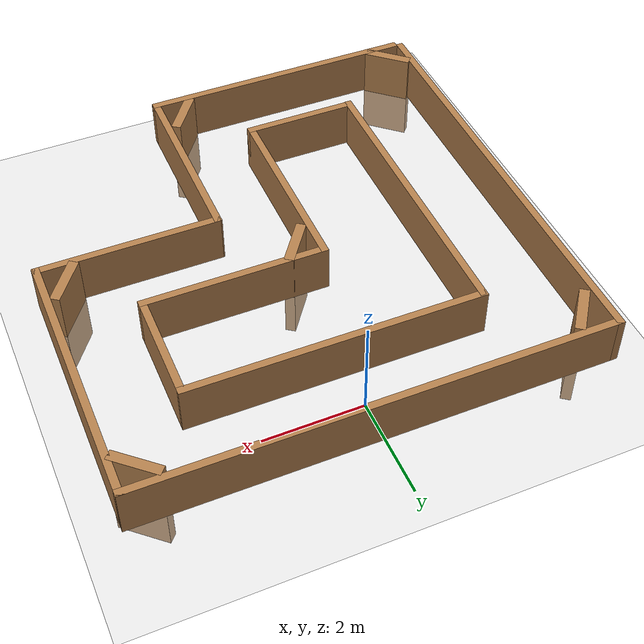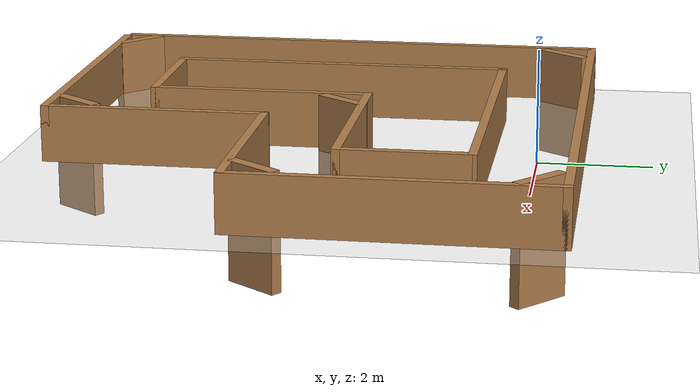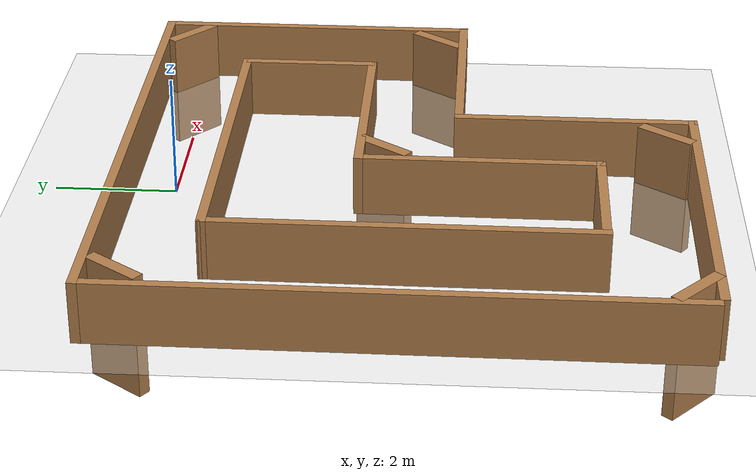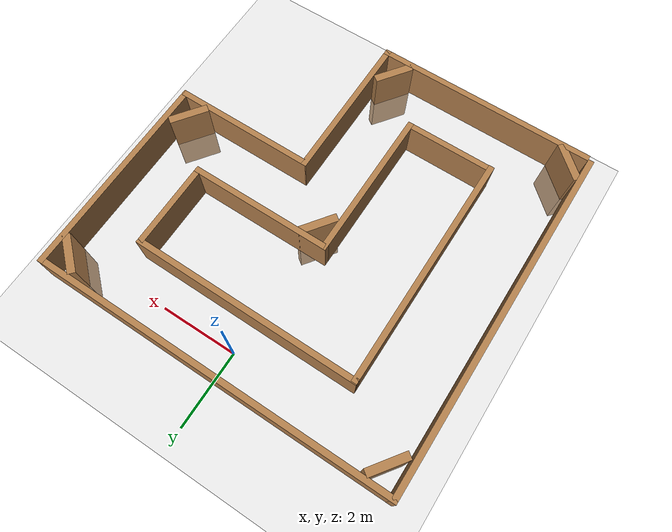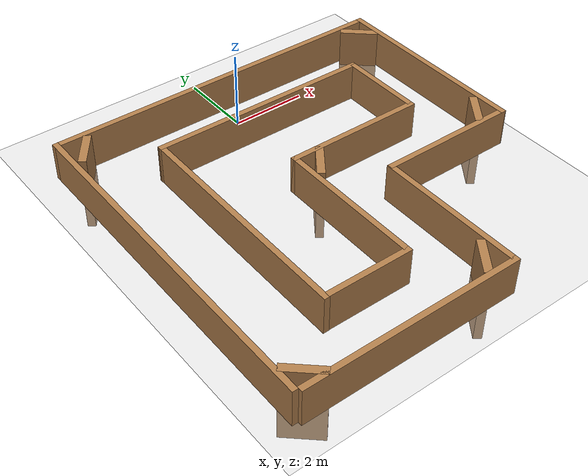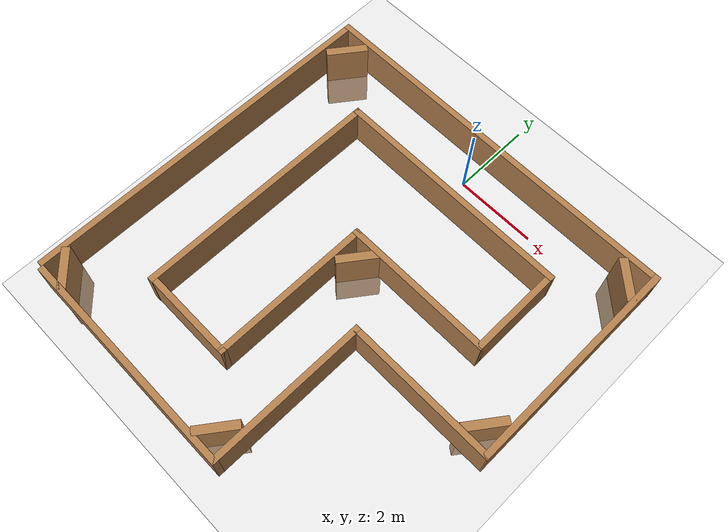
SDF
<sdf version="1.6">
 <world name="default">
  <light name="sun" type="directional">
   <pose>0 0 10 0 -0 0</pose>
   <diffuse>0.8 0.8 0.8 1</diffuse>
   <specular>0.2 0.2 0.2 1</specular>
   <attenuation>
    <range>1000</range>
    <constant>0.9</constant>
    <linear>0.01</linear>
    <quadratic>0.001</quadratic>
   </attenuation>
   <direction>0.5 0.1 -0.9</direction>
  </light>
  <model name="ground_plane">
   <static>1</static>
   <link name="link">
    <collision name="collision">
     <geometry><plane><normal>0 0 1</normal><size>100 100</size></plane></geometry>
     <surface><friction><ode><mu>100</mu><mu2>50</mu2></ode></friction></surface>
    </collision>
    <visual name="visual">
     <cast_shadows>0</cast_shadows>
     <geometry><plane><normal>0 0 1</normal><size>100 100</size></plane></geometry>
     <material>
      <script><uri>file://media/materials/scripts/gazebo.material</uri><name>Gazebo/Grey</name></script>
     </material>
    </visual>
    <velocity_decay><linear>0</linear><angular>0</angular></velocity_decay>
   </link>
  </model>
  <scene><ambient>0.4 0.4 0.4 1</ambient><background>0.7 0.7 0.7 1</background><shadows>0</shadows></scene>
  <physics name="default_physics" default="0" type="ode">
   <max_step_size>0.01</max_step_size>
   <real_time_factor>1</real_time_factor>
   <real_time_update_rate>1000</real_time_update_rate>
  </physics>
  <spherical_coordinates>
   <surface_model>EARTH_WGS84</surface_model>
   <latitude_deg>0</latitude_deg>
   <longitude_deg>0</longitude_deg>
   <elevation>0</elevation>
   <heading_deg>0</heading_deg>
  </spherical_coordinates>
  <model name="Circuit_ql_2">
   <pose>0 -3.85 0 0 -0 1.567</pose>
   <link name="Wall_0">
    <collision name="Wall_0_Collision">
     <geometry><box><size>5.75 0.15 1</size></box></geometry>
     <pose>0 0 0.5 0 -0 0</pose>
    </collision>
    <visual name="Wall_0_Visual">
     <pose>0 0 0.5 0 -0 0</pose>
     <geometry><box><size>5.75 0.15 1</size></box></geometry>
     <material>
      <script><uri>file://media/materials/scripts/gazebo.material</uri><name>Gazebo/Wood</name></script>
      <ambient>1 1 1 1</ambient>
     </material>
    </visual>
    <pose>-4.6 1.725 0 0 0 -1.5708</pose>
   </link>
   <link name="Wall_1">
    <collision name="Wall_1_Collision">
     <geometry><box><size>4 0.15 1</size></box></geometry>
     <pose>0 0 0.5 0 -0 0</pose>
    </collision>
    <visual name="Wall_1_Visual">
     <pose>0 0 0.5 0 -0 0</pose>
     <geometry><box><size>4 0.15 1</size></box></geometry>
     <material>
      <script><uri>file://media/materials/scripts/gazebo.material</uri><name>Gazebo/Wood</name></script>
      <ambient>1 1 1 1</ambient>
     </material>
    </visual>
    <pose>-2.675 -1.075 0 0 -0 0</pose>
   </link>
   <link name="Wall_11">
    <collision name="Wall_11_Collision">
     <geometry><box><size>2.25 0.15 1</size></box></geometry>
     <pose>0 0 0.5 0 -0 0</pose>
    </collision>
    <visual name="Wall_11_Visual">
     <pose>0 0 0.5 0 -0 0</pose>
     <geometry><box><size>2.25 0.15 1</size></box></geometry>
     <material>
      <script><uri>file://media/materials/scripts/gazebo.material</uri><name>Gazebo/Wood</name></script>
      <ambient>1 1 1 1</ambient>
     </material>
    </visual>
    <pose>-3.036 1.559 0 0 0 -1.5708</pose>
   </link>
   <link name="Wall_12">
    <collision name="Wall_12_Collision">
     <geometry><box><size>4 0.15 1</size></box></geometry>
     <pose>0 0 0.5 0 -0 0</pose>
    </collision>
    <visual name="Wall_12_Visual">
     <pose>0 0 0.5 0 -0 0</pose>
     <geometry><box><size>4 0.15 1</size></box></geometry>
     <material>
      <script><uri>file://media/materials/scripts/gazebo.material</uri><name>Gazebo/Wood</name></script>
      <ambient>1 1 1 1</ambient>
     </material>
    </visual>
    <pose>-1.111 0.509 0 0 -0 0</pose>
   </link>
   <link name="Wall_13">
    <collision name="Wall_13_Collision">
     <geometry><box><size>3.75 0.15 1</size></box></geometry>
     <pose>0 0 0.5 0 -0 0</pose>
    </collision>
    <visual name="Wall_13_Visual">
     <pose>0 0 0.5 0 -0 0</pose>
     <geometry><box><size>3.75 0.15 1</size></box></geometry>
     <material>
      <script><uri>file://media/materials/scripts/gazebo.material</uri><name>Gazebo/Wood</name></script>
      <ambient>1 1 1 1</ambient>
     </material>
    </visual>
    <pose>0.814 -1.291 0 0 0 -1.5708</pose>
   </link>
   <link name="Wall_14">
    <collision name="Wall_14_Collision">
     <geometry><box><size>2.25 0.15 1</size></box></geometry>
     <pose>0 0 0.5 0 -0 0</pose>
    </collision>
    <visual name="Wall_14_Visual">
     <pose>0 0 0.5 0 -0 0</pose>
     <geometry><box><size>2.25 0.15 1</size></box></geometry>
     <material>
      <script><uri>file://media/materials/scripts/gazebo.material</uri><name>Gazebo/Wood</name></script>
      <ambient>1 1 1 1</ambient>
     </material>
    </visual>
    <pose>1.9 -3.091 0 0 -0 0</pose>
   </link>
   <link name="Wall_15">
    <collision name="Wall_15_Collision">
     <geometry><box><size>5.98502 0.15 1</size></box></geometry>
     <pose>0 0 0.5 0 -0 0</pose>
    </collision>
    <visual name="Wall_15_Visual">
     <pose>0 0 0.5 0 -0 0</pose>
     <geometry><box><size>5.98502 0.15 1</size></box></geometry>
     <material>
      <script><uri>file://media/materials/scripts/gazebo.material</uri><name>Gazebo/Wood</name></script>
      <ambient>1 1 1 1</ambient>
     </material>
    </visual>
    <pose>3.0215 -0.1735 0 0 -0 1.56823</pose>
   </link>
   <link name="Wall_16">
    <collision name="Wall_16_Collision">
     <geometry><box><size>6.2 0.15 1</size></box></geometry>
     <pose>0 0 0.5 0 -0 0</pose>
    </collision>
    <visual name="Wall_16_Visual">
     <pose>0 0 0.5 0 -0 0</pose>
     <geometry><box><size>6.2 0.15 1</size></box></geometry>
     <material>
      <script><uri>file://media/materials/scripts/gazebo.material</uri><name>Gazebo/Wood</name></script>
      <ambient>1 1 1 1</ambient>
     </material>
    </visual>
    <pose>-0.02 2.744 0 0 -0 3.14159</pose>
   </link>
   <link name="Wall_2">
    <collision name="Wall_2_Collision">
     <geometry><box><size>3.7 0.15 1</size></box></geometry>
     <pose>0 0 0.5 0 -0 0</pose>
    </collision>
    <visual name="Wall_2_Visual">
     <pose>0 0 0.5 0 -0 0</pose>
     <geometry><box><size>3.7 0.15 1</size></box></geometry>
     <material>
      <script><uri>file://media/materials/scripts/gazebo.material</uri><name>Gazebo/Wood</name></script>
      <ambient>1 1 1 1</ambient>
     </material>
    </visual>
    <pose>-0.75 -2.875 0 0 0 -1.5708</pose>
   </link>
   <link name="Wall_3">
    <collision name="Wall_3_Collision">
     <geometry><box><size>5.5 0.15 1</size></box></geometry>
     <pose>0 0 0.5 0 -0 0</pose>
    </collision>
    <visual name="Wall_3_Visual">
     <pose>0 0 0.5 0 -0 0</pose>
     <geometry><box><size>5.5 0.15 1</size></box></geometry>
     <material>
      <script><uri>file://media/materials/scripts/gazebo.material</uri><name>Gazebo/Wood</name></script>
      <ambient>1 1 1 1</ambient>
     </material>
    </visual>
    <pose>1.925 -4.675 0 0 -0 0</pose>
   </link>
   <link name="Wall_7">
    <collision name="Wall_7_Collision">
     <geometry><box><size>9.5 0.15 1</size></box></geometry>
     <pose>0 0 0.5 0 -0 0</pose>
    </collision>
    <visual name="Wall_7_Visual">
     <pose>0 0 0.5 0 -0 0</pose>
     <geometry><box><size>9.5 0.15 1</size></box></geometry>
     <material>
      <script><uri>file://media/materials/scripts/gazebo.material</uri><name>Gazebo/Wood</name></script>
      <ambient>1 1 1 1</ambient>
     </material>
    </visual>
    <pose>4.6 0 0 0 -0 1.5708</pose>
   </link>
   <link name="Wall_9">
    <collision name="Wall_9_Collision">
     <geometry><box><size>9.25 0.15 1</size></box></geometry>
     <pose>0 0 0.5 0 -0 0</pose>
    </collision>
    <visual name="Wall_9_Visual">
     <pose>0 0 0.5 0 -0 0</pose>
     <geometry><box><size>9.25 0.15 1</size></box></geometry>
     <material>
      <script><uri>file://media/materials/scripts/gazebo.material</uri><name>Gazebo/Wood</name></script>
      <ambient>1 1 1 1</ambient>
     </material>
    </visual>
    <pose>0.05 4.675 0 0 -0 3.14159</pose>
   </link>
   <static>1</static>
  </model>
  <gravity>0 0 -9.8</gravity>
  <magnetic_field>6e-06 2.3e-05 -4.2e-05</magnetic_field>
  <atmosphere type="adiabatic"/>
  <audio><device>default</device></audio>
  <model name="edgel_clone">
   <pose>4.24315 -4.17332 0 0 -0 0.938492</pose>
   <link name="wall_north_1">
    <collision name="wall_north_1_Collision"><geometry><box><size>1 0.15 2</size></box></geometry></collision>
    <visual name="wall_north_1_Visual">
     <geometry><box><size>1 0.2 2</size></box></geometry>
     <material>
      <script><uri>file://media/materials/scripts/gazebo.material</uri><name>Gazebo/Wood</name></script>
      <ambient>1 1 1 1</ambient>
     </material>
     <meta><layer>0</layer></meta>
    </visual>
   </link>
   <static>1</static>
  </model>
  <model name="edgel_clone_0">
   <pose>-0.075014 -3.42123 0 0 -0 0.938492</pose>
   <link name="wall_north_1">
    <collision name="wall_north_1_Collision"><geometry><box><size>1 0.15 2</size></box></geometry></collision>
    <visual name="wall_north_1_Visual">
     <geometry><box><size>1 0.2 2</size></box></geometry>
     <material>
      <script><uri>file://media/materials/scripts/gazebo.material</uri><name>Gazebo/Wood</name></script>
      <ambient>1 1 1 1</ambient>
     </material>
     <meta><layer>0</layer></meta>
    </visual>
   </link>
   <static>1</static>
  </model>
  <model name="edgel_clone_1">
   <pose>-4.19028 0.258731 0 0 -0 0.938492</pose>
   <link name="wall_north_1">
    <collision name="wall_north_1_Collision"><geometry><box><size>1 0.15 2</size></box></geometry></collision>
    <visual name="wall_north_1_Visual">
     <geometry><box><size>1 0.2 2</size></box></geometry>
     <material>
      <script><uri>file://media/materials/scripts/gazebo.material</uri><name>Gazebo/Wood</name></script>
      <ambient>1 1 1 1</ambient>
     </material>
     <meta><layer>0</layer></meta>
    </visual>
   </link>
   <static>1</static>
  </model>
  <model name="edgel_clone_2">
   <pose>0.611585 -8.00162 0 0 -0 0.938492</pose>
   <link name="wall_north_1">
    <collision name="wall_north_1_Collision"><geometry><box><size>1 0.15 2</size></box></geometry></collision>
    <visual name="wall_north_1_Visual">
     <geometry><box><size>1 0.2 2</size></box></geometry>
     <material>
      <script><uri>file://media/materials/scripts/gazebo.material</uri><name>Gazebo/Wood</name></script>
      <ambient>1 1 1 1</ambient>
     </material>
     <meta><layer>0</layer></meta>
    </visual>
   </link>
   <static>1</static>
  </model>
  <model name="edger_clone">
   <pose>4.27777 0.284212 0 0 0 -0.735117</pose>
   <link name="wall_north_1">
    <collision name="wall_north_1_Collision"><geometry><box><size>1 0.15 2</size></box></geometry></collision>
    <visual name="wall_north_1_Visual">
     <geometry><box><size>1 0.2 2</size></box></geometry>
     <material>
      <script><uri>file://media/materials/scripts/gazebo.material</uri><name>Gazebo/Wood</name></script>
      <ambient>1 1 1 1</ambient>
     </material>
     <meta><layer>0</layer></meta>
    </visual>
   </link>
   <static>1</static>
  </model>
  <model name="edger_clone_0">
   <pose>-4.25944 -8.09493 0 0 0 -0.735117</pose>
   <link name="wall_north_1">
    <collision name="wall_north_1_Collision"><geometry><box><size>1 0.15 2</size></box></geometry></collision>
    <visual name="wall_north_1_Visual">
     <geometry><box><size>1 0.2 2</size></box></geometry>
     <material>
      <script><uri>file://media/materials/scripts/gazebo.material</uri><name>Gazebo/Wood</name></script>
      <ambient>1 1 1 1</ambient>
     </material>
     <meta><layer>0</layer></meta>
    </visual>
   </link>
   <static>1</static>
  </model>
 </world>
</sdf>
